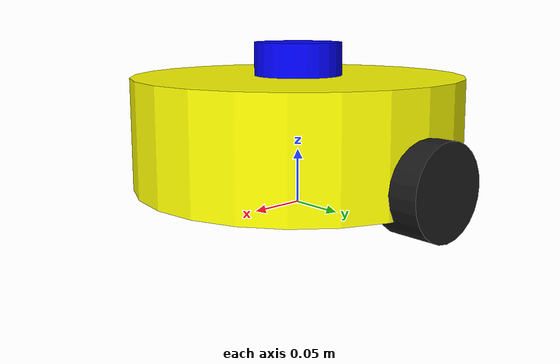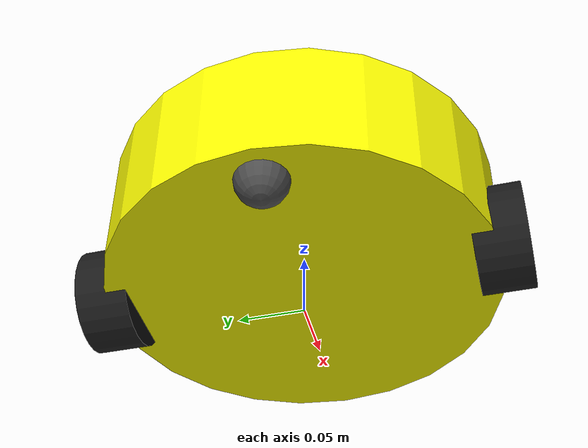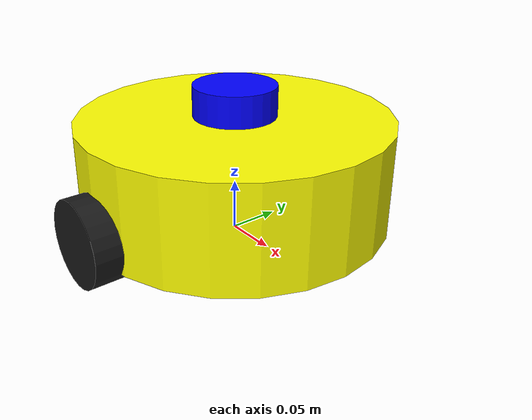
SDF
<?xml version="1.0"?>
<sdf version="1.11">
  <model name="dx_bot">

    <link name="footprint">
      <pose>0 0 0 0 0 0</pose>
      <inertial>
        <mass>2.0</mass>
        <inertia>
          <ixx>0.0141</ixx>
          <iyy>0.0104</iyy>
          <izz>0.0154</izz>
        </inertia>
      </inertial>

      <collision name="base_collision">
        <pose>0 0 0.069 0 0 0</pose>
        <geometry>
          <cylinder>
            <radius>0.15</radius>
            <length>0.1</length>
          </cylinder>
        </geometry>
      </collision>

      <visual name="base_visual">
        <pose>0 0 0.069 0 0 0</pose>
        <geometry>
          <cylinder>
            <radius>0.15</radius>
            <length>0.1</length>
          </cylinder>
        </geometry>
        <material>
          <diffuse>1 1 0 1</diffuse>
        </material>
      </visual>
    </link>

    <!-- Roda esquerda -->
    <link name="left_wheel">
      <pose>0 0.15 0.04 1.5708 0 0</pose>
      <inertial>
        <mass>0.15</mass>
        <inertia>
          <ixx>6.0e-5</ixx>
          <iyy>1.0e-4</iyy>
          <izz>6.0e-5</izz>
        </inertia>
      </inertial>

      <collision name="left_wheel_collision">
        <geometry>
          <cylinder>
            <radius>0.04</radius>
            <length>0.04</length>
          </cylinder>
        </geometry>
        <surface>
          <friction>
            <ode>
              <mu>2.0</mu>
              <mu2>2.0</mu2>
            </ode>
          </friction>
        </surface>
      </collision>

      <visual name="left_wheel_visual">
        <geometry>
          <cylinder>
            <radius>0.04</radius>
            <length>0.04</length>
          </cylinder>
        </geometry>
        <material>
          <diffuse>0.1 0.1 0.1 1</diffuse>
        </material>
      </visual>
    </link>

    <joint name="left_wheel_joint" type="revolute">
      <parent>footprint</parent>
      <child>left_wheel</child>
      <pose>0 0 0 0 0 0</pose>
      <axis>
        <xyz>0 0 1</xyz>
        <limit>
          <lower>-1e16</lower>
          <upper>1e16</upper>
          <effort>3</effort>
          <velocity>15</velocity>
        </limit>
        <dynamics>
          <damping>0.05</damping>
          <friction>0.0</friction>
        </dynamics>
      </axis>
    </joint>

    <!-- Roda direita -->
    <link name="right_wheel">
      <pose>0 -0.15 0.04 1.5708 0 0</pose>
      <inertial>
        <mass>0.15</mass>
        <inertia>
          <ixx>6.0e-5</ixx>
          <iyy>1.0e-4</iyy>
          <izz>6.0e-5</izz>
        </inertia>
      </inertial>

      <collision name="right_wheel_collision">
        <geometry>
          <cylinder>
            <radius>0.04</radius>
            <length>0.04</length>
          </cylinder>
        </geometry>
        <surface>
          <friction>
            <ode>
              <mu>2.0</mu>
              <mu2>2.0</mu2>
            </ode>
          </friction>
        </surface>
      </collision>

      <visual name="right_wheel_visual">
        <geometry>
          <cylinder>
            <radius>0.04</radius>
            <length>0.04</length>
          </cylinder>
        </geometry>
        <material>
          <diffuse>0.1 0.1 0.1 1</diffuse>
        </material>
      </visual>
    </link>

    <joint name="right_wheel_joint" type="revolute">
      <parent>footprint</parent>
      <child>right_wheel</child>
      <pose>0 0 0 0 0 0</pose>
      <axis>
        <xyz>0 0 1</xyz>
        <limit>
          <lower>-1e16</lower>
          <upper>1e16</upper>
          <effort>3</effort>
          <velocity>15</velocity>
        </limit>
        <dynamics>
          <damping>0.05</damping>
          <friction>0.0</friction>
        </dynamics>
      </axis>
    </joint>

    <!-- Caster traseiro -->
    <link name="caster">
      <pose>-0.12 0 0.02 0 0 0</pose>
      <inertial>
        <mass>0.05</mass>
        <inertia>
          <ixx>1e-5</ixx>
          <iyy>1e-5</iyy>
          <izz>1e-5</izz>
        </inertia>
      </inertial>

      <collision name="caster_collision">
        <geometry>
          <sphere>
            <radius>0.02</radius>
          </sphere>
        </geometry>
        <surface>
          <friction>
            <ode>
              <mu>0.2</mu>
              <mu2>0.2</mu2>
            </ode>
          </friction>
        </surface>
      </collision>

      <visual name="caster_visual">
        <geometry>
          <sphere>
            <radius>0.02</radius>
          </sphere>
        </geometry>
        <material>
          <diffuse>0.3 0.3 0.3 1</diffuse>
        </material>
      </visual>
    </link>

    <joint name="caster_joint" type="fixed">
      <parent>footprint</parent>
      <child>caster</child>
    </joint>

    <!-- Laser -->
    <link name="link_laser">
      <pose>0 0 0.134 0 0 0</pose>
      <inertial>
        <mass>0.1</mass>
        <inertia>
          <ixx>1e-4</ixx>
          <iyy>1e-4</iyy>
          <izz>1e-4</izz>
        </inertia>
      </inertial>

      <collision name="laser_collision">
        <geometry>
          <cylinder>
            <radius>0.04</radius>
            <length>0.03</length>
          </cylinder>
        </geometry>
      </collision>

      <visual name="laser_visual">
        <geometry>
          <cylinder>
            <radius>0.04</radius>
            <length>0.03</length>
          </cylinder>
        </geometry>
        <material>
          <diffuse>0 0 1 1</diffuse>
        </material>
      </visual>

      <sensor name="hokuyo_lidar" type="gpu_lidar">
        <pose>0 0 0 0 0 0</pose>
        <update_rate>20</update_rate>

        <always_on>1</always_on>
        <visualize>true</visualize>
        <topic>/scan</topic>
        <lidar>
          <scan>
            <horizontal>
              <samples>720</samples>
              <resolution>1</resolution>

              <min_angle>-3.1416</min_angle>
              <max_angle>3.1416</max_angle>
            </horizontal>
          </scan>
          <range>
            <min>0.08</min>
            <max>10.0</max>
            <resolution>0.01</resolution>
          </range>
          <noise>
            <type>gaussian</type>
            <mean>0.0</mean>
            <stddev>0.005</stddev>
          </noise>
        </lidar>
      </sensor>
    </link>

    <joint name="joint_laser" type="fixed">
      <parent>footprint</parent>
      <child>link_laser</child>
    </joint>

    <!-- Plugin diferencial -->
    <plugin
      filename="gz-sim-diff-drive-system"
      name="gz::sim::systems::DiffDrive">
      <left_joint>left_wheel_joint</left_joint>
      <right_joint>right_wheel_joint</right_joint>
      <wheel_separation>0.30</wheel_separation>
      <wheel_radius>0.04</wheel_radius>
      <topic>/cmd_vel</topic>
      <odom_topic>/odom</odom_topic>
      <frame_id>odom</frame_id>
      <child_frame_id>base_link</child_frame_id>
    </plugin>

  </model>
</sdf>
